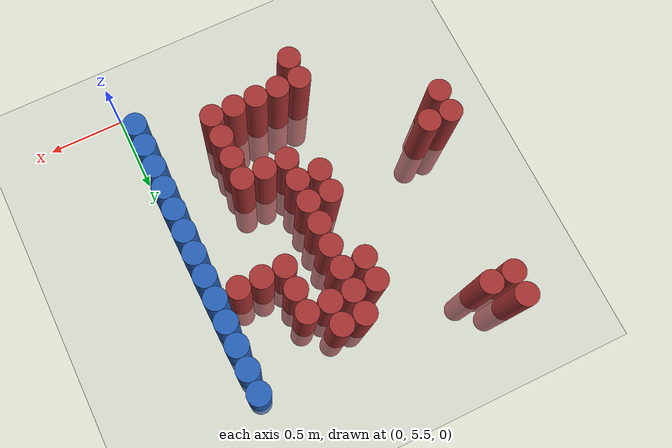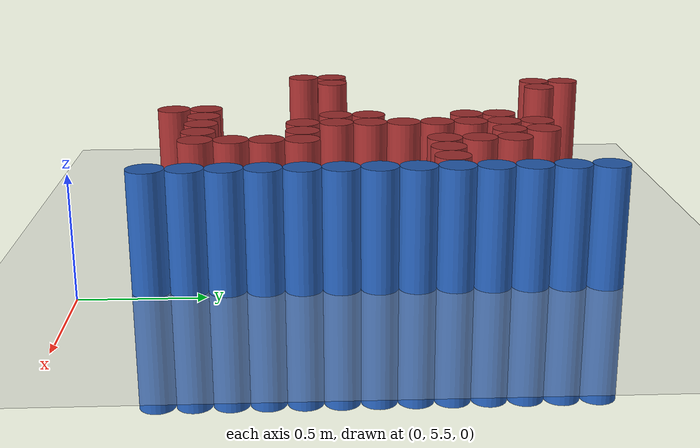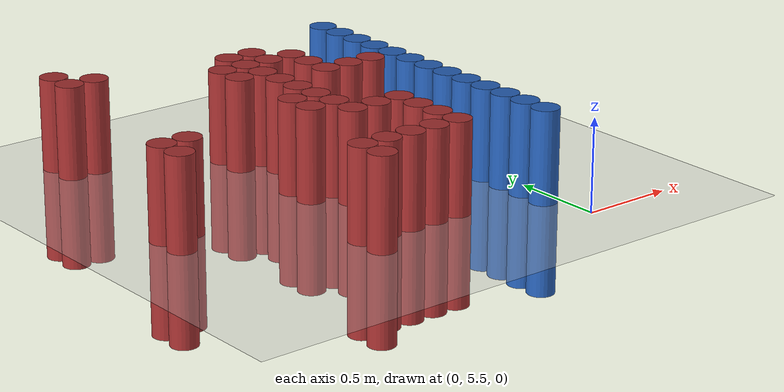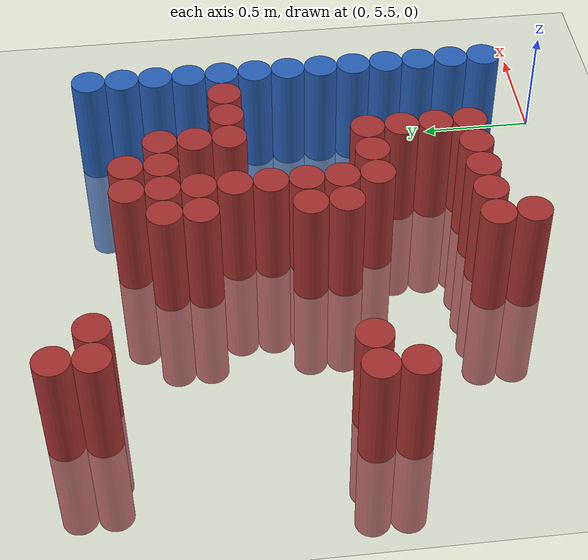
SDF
<sdf version="1.6">
 <world name="default">
  <model name="ground_plane">
   <static>1</static>
   <link name="link">
    <collision name="collision">
     <geometry><plane><normal>0 0 1</normal><size>100 100</size></plane></geometry>
     <surface><friction><ode><mu>100</mu><mu2>50</mu2></ode></friction></surface>
    </collision>
    <visual name="visual">
     <cast_shadows>0</cast_shadows>
     <geometry><plane><normal>0 0 1</normal><size>100 100</size></plane></geometry>
     <material>
      <script><uri>file://media/materials/scripts/gazebo.material</uri><name>Gazebo/Grey</name></script>
     </material>
    </visual>
   </link>
  </model>
  <model name="unit_cylinder_220">
   <static>1</static>
   <pose>-1.875000 6.375000 0.000000 0.000000 0.000000 0.000000</pose>
   <link name="link">
    <inertial>
     <mass>1</mass>
     <inertia><ixx>0.145833</ixx><ixy>0</ixy><ixz>0</ixz><iyy>0.145833</iyy><iyz>0</iyz><izz>0.125</izz></inertia>
    </inertial>
    <collision name="collision">
     <geometry><cylinder><radius>0.075000</radius><length>1</length></cylinder></geometry>
    </collision>
    <visual name="visual">
     <geometry><cylinder><radius>0.075000</radius><length>1</length></cylinder></geometry>
     <material>
      <ambient>0.648000 0.192000 0.192000 1</ambient>
      <diffuse>0.648000 0.192000 0.192000 1</diffuse>
     </material>
     <material>
      <script><name>Gazebo/Grey</name><uri>file://media/materials/scripts/gazebo.material</uri></script>
     </material>
    </visual>
   </link>
  </model>
  <model name="unit_cylinder_221">
   <static>1</static>
   <pose>-1.875000 6.525000 0.000000 0.000000 0.000000 0.000000</pose>
   <link name="link">
    <inertial>
     <mass>1</mass>
     <inertia><ixx>0.145833</ixx><ixy>0</ixy><ixz>0</ixz><iyy>0.145833</iyy><iyz>0</iyz><izz>0.125</izz></inertia>
    </inertial>
    <collision name="collision">
     <geometry><cylinder><radius>0.075000</radius><length>1</length></cylinder></geometry>
    </collision>
    <visual name="visual">
     <geometry><cylinder><radius>0.075000</radius><length>1</length></cylinder></geometry>
     <material>
      <ambient>0.648000 0.192000 0.192000 1</ambient>
      <diffuse>0.648000 0.192000 0.192000 1</diffuse>
     </material>
     <material>
      <script><name>Gazebo/Grey</name><uri>file://media/materials/scripts/gazebo.material</uri></script>
     </material>
    </visual>
   </link>
  </model>
  <model name="unit_cylinder_227">
   <static>1</static>
   <pose>-1.725000 6.525000 0.000000 0.000000 0.000000 0.000000</pose>
   <link name="link">
    <inertial>
     <mass>1</mass>
     <inertia><ixx>0.145833</ixx><ixy>0</ixy><ixz>0</ixz><iyy>0.145833</iyy><iyz>0</iyz><izz>0.125</izz></inertia>
    </inertial>
    <collision name="collision">
     <geometry><cylinder><radius>0.075000</radius><length>1</length></cylinder></geometry>
    </collision>
    <visual name="visual">
     <geometry><cylinder><radius>0.075000</radius><length>1</length></cylinder></geometry>
     <material>
      <ambient>0.648000 0.192000 0.192000 1</ambient>
      <diffuse>0.648000 0.192000 0.192000 1</diffuse>
     </material>
     <material>
      <script><name>Gazebo/Grey</name><uri>file://media/materials/scripts/gazebo.material</uri></script>
     </material>
    </visual>
   </link>
  </model>
  <model name="unit_cylinder_228">
   <static>1</static>
   <pose>-1.725000 7.575000 0.000000 0.000000 0.000000 0.000000</pose>
   <link name="link">
    <inertial>
     <mass>1</mass>
     <inertia><ixx>0.145833</ixx><ixy>0</ixy><ixz>0</ixz><iyy>0.145833</iyy><iyz>0</iyz><izz>0.125</izz></inertia>
    </inertial>
    <collision name="collision">
     <geometry><cylinder><radius>0.075000</radius><length>1</length></cylinder></geometry>
    </collision>
    <visual name="visual">
     <geometry><cylinder><radius>0.075000</radius><length>1</length></cylinder></geometry>
     <material>
      <ambient>0.648000 0.192000 0.192000 1</ambient>
      <diffuse>0.648000 0.192000 0.192000 1</diffuse>
     </material>
     <material>
      <script><name>Gazebo/Grey</name><uri>file://media/materials/scripts/gazebo.material</uri></script>
     </material>
    </visual>
   </link>
  </model>
  <model name="unit_cylinder_229">
   <static>1</static>
   <pose>-1.725000 7.725000 0.000000 0.000000 0.000000 0.000000</pose>
   <link name="link">
    <inertial>
     <mass>1</mass>
     <inertia><ixx>0.145833</ixx><ixy>0</ixy><ixz>0</ixz><iyy>0.145833</iyy><iyz>0</iyz><izz>0.125</izz></inertia>
    </inertial>
    <collision name="collision">
     <geometry><cylinder><radius>0.075000</radius><length>1</length></cylinder></geometry>
    </collision>
    <visual name="visual">
     <geometry><cylinder><radius>0.075000</radius><length>1</length></cylinder></geometry>
     <material>
      <ambient>0.648000 0.192000 0.192000 1</ambient>
      <diffuse>0.648000 0.192000 0.192000 1</diffuse>
     </material>
     <material>
      <script><name>Gazebo/Grey</name><uri>file://media/materials/scripts/gazebo.material</uri></script>
     </material>
    </visual>
   </link>
  </model>
  <model name="unit_cylinder_232">
   <static>1</static>
   <pose>-1.575000 7.575000 0.000000 0.000000 0.000000 0.000000</pose>
   <link name="link">
    <inertial>
     <mass>1</mass>
     <inertia><ixx>0.145833</ixx><ixy>0</ixy><ixz>0</ixz><iyy>0.145833</iyy><iyz>0</iyz><izz>0.125</izz></inertia>
    </inertial>
    <collision name="collision">
     <geometry><cylinder><radius>0.075000</radius><length>1</length></cylinder></geometry>
    </collision>
    <visual name="visual">
     <geometry><cylinder><radius>0.075000</radius><length>1</length></cylinder></geometry>
     <material>
      <ambient>0.648000 0.192000 0.192000 1</ambient>
      <diffuse>0.648000 0.192000 0.192000 1</diffuse>
     </material>
     <material>
      <script><name>Gazebo/Grey</name><uri>file://media/materials/scripts/gazebo.material</uri></script>
     </material>
    </visual>
   </link>
  </model>
  <model name="unit_cylinder_248">
   <static>1</static>
   <pose>-1.125000 5.775000 0.000000 0.000000 0.000000 0.000000</pose>
   <link name="link">
    <inertial>
     <mass>1</mass>
     <inertia><ixx>0.145833</ixx><ixy>0</ixy><ixz>0</ixz><iyy>0.145833</iyy><iyz>0</iyz><izz>0.125</izz></inertia>
    </inertial>
    <collision name="collision">
     <geometry><cylinder><radius>0.075000</radius><length>1</length></cylinder></geometry>
    </collision>
    <visual name="visual">
     <geometry><cylinder><radius>0.075000</radius><length>1</length></cylinder></geometry>
     <material>
      <ambient>0.648000 0.192000 0.192000 1</ambient>
      <diffuse>0.648000 0.192000 0.192000 1</diffuse>
     </material>
     <material>
      <script><name>Gazebo/Grey</name><uri>file://media/materials/scripts/gazebo.material</uri></script>
     </material>
    </visual>
   </link>
  </model>
  <model name="unit_cylinder_249">
   <static>1</static>
   <pose>-1.125000 5.925000 0.000000 0.000000 0.000000 0.000000</pose>
   <link name="link">
    <inertial>
     <mass>1</mass>
     <inertia><ixx>0.145833</ixx><ixy>0</ixy><ixz>0</ixz><iyy>0.145833</iyy><iyz>0</iyz><izz>0.125</izz></inertia>
    </inertial>
    <collision name="collision">
     <geometry><cylinder><radius>0.075000</radius><length>1</length></cylinder></geometry>
    </collision>
    <visual name="visual">
     <geometry><cylinder><radius>0.075000</radius><length>1</length></cylinder></geometry>
     <material>
      <ambient>0.648000 0.192000 0.192000 1</ambient>
      <diffuse>0.648000 0.192000 0.192000 1</diffuse>
     </material>
     <material>
      <script><name>Gazebo/Grey</name><uri>file://media/materials/scripts/gazebo.material</uri></script>
     </material>
    </visual>
   </link>
  </model>
  <model name="unit_cylinder_254">
   <static>1</static>
   <pose>-0.975000 5.925000 0.000000 0.000000 0.000000 0.000000</pose>
   <link name="link">
    <inertial>
     <mass>1</mass>
     <inertia><ixx>0.145833</ixx><ixy>0</ixy><ixz>0</ixz><iyy>0.145833</iyy><iyz>0</iyz><izz>0.125</izz></inertia>
    </inertial>
    <collision name="collision">
     <geometry><cylinder><radius>0.075000</radius><length>1</length></cylinder></geometry>
    </collision>
    <visual name="visual">
     <geometry><cylinder><radius>0.075000</radius><length>1</length></cylinder></geometry>
     <material>
      <ambient>0.648000 0.192000 0.192000 1</ambient>
      <diffuse>0.648000 0.192000 0.192000 1</diffuse>
     </material>
     <material>
      <script><name>Gazebo/Grey</name><uri>file://media/materials/scripts/gazebo.material</uri></script>
     </material>
    </visual>
   </link>
  </model>
  <model name="unit_cylinder_255">
   <static>1</static>
   <pose>-0.975000 6.525000 0.000000 0.000000 0.000000 0.000000</pose>
   <link name="link">
    <inertial>
     <mass>1</mass>
     <inertia><ixx>0.145833</ixx><ixy>0</ixy><ixz>0</ixz><iyy>0.145833</iyy><iyz>0</iyz><izz>0.125</izz></inertia>
    </inertial>
    <collision name="collision">
     <geometry><cylinder><radius>0.075000</radius><length>1</length></cylinder></geometry>
    </collision>
    <visual name="visual">
     <geometry><cylinder><radius>0.075000</radius><length>1</length></cylinder></geometry>
     <material>
      <ambient>0.648000 0.192000 0.192000 1</ambient>
      <diffuse>0.648000 0.192000 0.192000 1</diffuse>
     </material>
     <material>
      <script><name>Gazebo/Grey</name><uri>file://media/materials/scripts/gazebo.material</uri></script>
     </material>
    </visual>
   </link>
  </model>
  <model name="unit_cylinder_256">
   <static>1</static>
   <pose>-0.975000 6.675000 0.000000 0.000000 0.000000 0.000000</pose>
   <link name="link">
    <inertial>
     <mass>1</mass>
     <inertia><ixx>0.145833</ixx><ixy>0</ixy><ixz>0</ixz><iyy>0.145833</iyy><iyz>0</iyz><izz>0.125</izz></inertia>
    </inertial>
    <collision name="collision">
     <geometry><cylinder><radius>0.075000</radius><length>1</length></cylinder></geometry>
    </collision>
    <visual name="visual">
     <geometry><cylinder><radius>0.075000</radius><length>1</length></cylinder></geometry>
     <material>
      <ambient>0.648000 0.192000 0.192000 1</ambient>
      <diffuse>0.648000 0.192000 0.192000 1</diffuse>
     </material>
     <material>
      <script><name>Gazebo/Grey</name><uri>file://media/materials/scripts/gazebo.material</uri></script>
     </material>
    </visual>
   </link>
  </model>
  <model name="unit_cylinder_257">
   <static>1</static>
   <pose>-0.975000 7.125000 0.000000 0.000000 0.000000 0.000000</pose>
   <link name="link">
    <inertial>
     <mass>1</mass>
     <inertia><ixx>0.145833</ixx><ixy>0</ixy><ixz>0</ixz><iyy>0.145833</iyy><iyz>0</iyz><izz>0.125</izz></inertia>
    </inertial>
    <collision name="collision">
     <geometry><cylinder><radius>0.075000</radius><length>1</length></cylinder></geometry>
    </collision>
    <visual name="visual">
     <geometry><cylinder><radius>0.075000</radius><length>1</length></cylinder></geometry>
     <material>
      <ambient>0.648000 0.192000 0.192000 1</ambient>
      <diffuse>0.648000 0.192000 0.192000 1</diffuse>
     </material>
     <material>
      <script><name>Gazebo/Grey</name><uri>file://media/materials/scripts/gazebo.material</uri></script>
     </material>
    </visual>
   </link>
  </model>
  <model name="unit_cylinder_258">
   <static>1</static>
   <pose>-0.975000 7.275000 0.000000 0.000000 0.000000 0.000000</pose>
   <link name="link">
    <inertial>
     <mass>1</mass>
     <inertia><ixx>0.145833</ixx><ixy>0</ixy><ixz>0</ixz><iyy>0.145833</iyy><iyz>0</iyz><izz>0.125</izz></inertia>
    </inertial>
    <collision name="collision">
     <geometry><cylinder><radius>0.075000</radius><length>1</length></cylinder></geometry>
    </collision>
    <visual name="visual">
     <geometry><cylinder><radius>0.075000</radius><length>1</length></cylinder></geometry>
     <material>
      <ambient>0.648000 0.192000 0.192000 1</ambient>
      <diffuse>0.648000 0.192000 0.192000 1</diffuse>
     </material>
     <material>
      <script><name>Gazebo/Grey</name><uri>file://media/materials/scripts/gazebo.material</uri></script>
     </material>
    </visual>
   </link>
  </model>
  <model name="unit_cylinder_263">
   <static>1</static>
   <pose>-0.825000 5.925000 0.000000 0.000000 0.000000 0.000000</pose>
   <link name="link">
    <inertial>
     <mass>1</mass>
     <inertia><ixx>0.145833</ixx><ixy>0</ixy><ixz>0</ixz><iyy>0.145833</iyy><iyz>0</iyz><izz>0.125</izz></inertia>
    </inertial>
    <collision name="collision">
     <geometry><cylinder><radius>0.075000</radius><length>1</length></cylinder></geometry>
    </collision>
    <visual name="visual">
     <geometry><cylinder><radius>0.075000</radius><length>1</length></cylinder></geometry>
     <material>
      <ambient>0.648000 0.192000 0.192000 1</ambient>
      <diffuse>0.648000 0.192000 0.192000 1</diffuse>
     </material>
     <material>
      <script><name>Gazebo/Grey</name><uri>file://media/materials/scripts/gazebo.material</uri></script>
     </material>
    </visual>
   </link>
  </model>
  <model name="unit_cylinder_264">
   <static>1</static>
   <pose>-0.825000 6.375000 0.000000 0.000000 0.000000 0.000000</pose>
   <link name="link">
    <inertial>
     <mass>1</mass>
     <inertia><ixx>0.145833</ixx><ixy>0</ixy><ixz>0</ixz><iyy>0.145833</iyy><iyz>0</iyz><izz>0.125</izz></inertia>
    </inertial>
    <collision name="collision">
     <geometry><cylinder><radius>0.075000</radius><length>1</length></cylinder></geometry>
    </collision>
    <visual name="visual">
     <geometry><cylinder><radius>0.075000</radius><length>1</length></cylinder></geometry>
     <material>
      <ambient>0.648000 0.192000 0.192000 1</ambient>
      <diffuse>0.648000 0.192000 0.192000 1</diffuse>
     </material>
     <material>
      <script><name>Gazebo/Grey</name><uri>file://media/materials/scripts/gazebo.material</uri></script>
     </material>
    </visual>
   </link>
  </model>
  <model name="unit_cylinder_265">
   <static>1</static>
   <pose>-0.825000 6.525000 0.000000 0.000000 0.000000 0.000000</pose>
   <link name="link">
    <inertial>
     <mass>1</mass>
     <inertia><ixx>0.145833</ixx><ixy>0</ixy><ixz>0</ixz><iyy>0.145833</iyy><iyz>0</iyz><izz>0.125</izz></inertia>
    </inertial>
    <collision name="collision">
     <geometry><cylinder><radius>0.075000</radius><length>1</length></cylinder></geometry>
    </collision>
    <visual name="visual">
     <geometry><cylinder><radius>0.075000</radius><length>1</length></cylinder></geometry>
     <material>
      <ambient>0.648000 0.192000 0.192000 1</ambient>
      <diffuse>0.648000 0.192000 0.192000 1</diffuse>
     </material>
     <material>
      <script><name>Gazebo/Grey</name><uri>file://media/materials/scripts/gazebo.material</uri></script>
     </material>
    </visual>
   </link>
  </model>
  <model name="unit_cylinder_266">
   <static>1</static>
   <pose>-0.825000 6.675000 0.000000 0.000000 0.000000 0.000000</pose>
   <link name="link">
    <inertial>
     <mass>1</mass>
     <inertia><ixx>0.145833</ixx><ixy>0</ixy><ixz>0</ixz><iyy>0.145833</iyy><iyz>0</iyz><izz>0.125</izz></inertia>
    </inertial>
    <collision name="collision">
     <geometry><cylinder><radius>0.075000</radius><length>1</length></cylinder></geometry>
    </collision>
    <visual name="visual">
     <geometry><cylinder><radius>0.075000</radius><length>1</length></cylinder></geometry>
     <material>
      <ambient>0.648000 0.192000 0.192000 1</ambient>
      <diffuse>0.648000 0.192000 0.192000 1</diffuse>
     </material>
     <material>
      <script><name>Gazebo/Grey</name><uri>file://media/materials/scripts/gazebo.material</uri></script>
     </material>
    </visual>
   </link>
  </model>
  <model name="unit_cylinder_267">
   <static>1</static>
   <pose>-0.825000 6.825000 0.000000 0.000000 0.000000 0.000000</pose>
   <link name="link">
    <inertial>
     <mass>1</mass>
     <inertia><ixx>0.145833</ixx><ixy>0</ixy><ixz>0</ixz><iyy>0.145833</iyy><iyz>0</iyz><izz>0.125</izz></inertia>
    </inertial>
    <collision name="collision">
     <geometry><cylinder><radius>0.075000</radius><length>1</length></cylinder></geometry>
    </collision>
    <visual name="visual">
     <geometry><cylinder><radius>0.075000</radius><length>1</length></cylinder></geometry>
     <material>
      <ambient>0.648000 0.192000 0.192000 1</ambient>
      <diffuse>0.648000 0.192000 0.192000 1</diffuse>
     </material>
     <material>
      <script><name>Gazebo/Grey</name><uri>file://media/materials/scripts/gazebo.material</uri></script>
     </material>
    </visual>
   </link>
  </model>
  <model name="unit_cylinder_268">
   <static>1</static>
   <pose>-0.825000 6.975000 0.000000 0.000000 0.000000 0.000000</pose>
   <link name="link">
    <inertial>
     <mass>1</mass>
     <inertia><ixx>0.145833</ixx><ixy>0</ixy><ixz>0</ixz><iyy>0.145833</iyy><iyz>0</iyz><izz>0.125</izz></inertia>
    </inertial>
    <collision name="collision">
     <geometry><cylinder><radius>0.075000</radius><length>1</length></cylinder></geometry>
    </collision>
    <visual name="visual">
     <geometry><cylinder><radius>0.075000</radius><length>1</length></cylinder></geometry>
     <material>
      <ambient>0.648000 0.192000 0.192000 1</ambient>
      <diffuse>0.648000 0.192000 0.192000 1</diffuse>
     </material>
     <material>
      <script><name>Gazebo/Grey</name><uri>file://media/materials/scripts/gazebo.material</uri></script>
     </material>
    </visual>
   </link>
  </model>
  <model name="unit_cylinder_269">
   <static>1</static>
   <pose>-0.825000 7.125000 0.000000 0.000000 0.000000 0.000000</pose>
   <link name="link">
    <inertial>
     <mass>1</mass>
     <inertia><ixx>0.145833</ixx><ixy>0</ixy><ixz>0</ixz><iyy>0.145833</iyy><iyz>0</iyz><izz>0.125</izz></inertia>
    </inertial>
    <collision name="collision">
     <geometry><cylinder><radius>0.075000</radius><length>1</length></cylinder></geometry>
    </collision>
    <visual name="visual">
     <geometry><cylinder><radius>0.075000</radius><length>1</length></cylinder></geometry>
     <material>
      <ambient>0.648000 0.192000 0.192000 1</ambient>
      <diffuse>0.648000 0.192000 0.192000 1</diffuse>
     </material>
     <material>
      <script><name>Gazebo/Grey</name><uri>file://media/materials/scripts/gazebo.material</uri></script>
     </material>
    </visual>
   </link>
  </model>
  <model name="unit_cylinder_270">
   <static>1</static>
   <pose>-0.825000 7.275000 0.000000 0.000000 0.000000 0.000000</pose>
   <link name="link">
    <inertial>
     <mass>1</mass>
     <inertia><ixx>0.145833</ixx><ixy>0</ixy><ixz>0</ixz><iyy>0.145833</iyy><iyz>0</iyz><izz>0.125</izz></inertia>
    </inertial>
    <collision name="collision">
     <geometry><cylinder><radius>0.075000</radius><length>1</length></cylinder></geometry>
    </collision>
    <visual name="visual">
     <geometry><cylinder><radius>0.075000</radius><length>1</length></cylinder></geometry>
     <material>
      <ambient>0.648000 0.192000 0.192000 1</ambient>
      <diffuse>0.648000 0.192000 0.192000 1</diffuse>
     </material>
     <material>
      <script><name>Gazebo/Grey</name><uri>file://media/materials/scripts/gazebo.material</uri></script>
     </material>
    </visual>
   </link>
  </model>
  <model name="unit_cylinder_271">
   <static>1</static>
   <pose>-0.825000 7.425000 0.000000 0.000000 0.000000 0.000000</pose>
   <link name="link">
    <inertial>
     <mass>1</mass>
     <inertia><ixx>0.145833</ixx><ixy>0</ixy><ixz>0</ixz><iyy>0.145833</iyy><iyz>0</iyz><izz>0.125</izz></inertia>
    </inertial>
    <collision name="collision">
     <geometry><cylinder><radius>0.075000</radius><length>1</length></cylinder></geometry>
    </collision>
    <visual name="visual">
     <geometry><cylinder><radius>0.075000</radius><length>1</length></cylinder></geometry>
     <material>
      <ambient>0.648000 0.192000 0.192000 1</ambient>
      <diffuse>0.648000 0.192000 0.192000 1</diffuse>
     </material>
     <material>
      <script><name>Gazebo/Grey</name><uri>file://media/materials/scripts/gazebo.material</uri></script>
     </material>
    </visual>
   </link>
  </model>
  <model name="unit_cylinder_277">
   <static>1</static>
   <pose>-0.675000 5.925000 0.000000 0.000000 0.000000 0.000000</pose>
   <link name="link">
    <inertial>
     <mass>1</mass>
     <inertia><ixx>0.145833</ixx><ixy>0</ixy><ixz>0</ixz><iyy>0.145833</iyy><iyz>0</iyz><izz>0.125</izz></inertia>
    </inertial>
    <collision name="collision">
     <geometry><cylinder><radius>0.075000</radius><length>1</length></cylinder></geometry>
    </collision>
    <visual name="visual">
     <geometry><cylinder><radius>0.075000</radius><length>1</length></cylinder></geometry>
     <material>
      <ambient>0.648000 0.192000 0.192000 1</ambient>
      <diffuse>0.648000 0.192000 0.192000 1</diffuse>
     </material>
     <material>
      <script><name>Gazebo/Grey</name><uri>file://media/materials/scripts/gazebo.material</uri></script>
     </material>
    </visual>
   </link>
  </model>
  <model name="unit_cylinder_278">
   <static>1</static>
   <pose>-0.675000 6.375000 0.000000 0.000000 0.000000 0.000000</pose>
   <link name="link">
    <inertial>
     <mass>1</mass>
     <inertia><ixx>0.145833</ixx><ixy>0</ixy><ixz>0</ixz><iyy>0.145833</iyy><iyz>0</iyz><izz>0.125</izz></inertia>
    </inertial>
    <collision name="collision">
     <geometry><cylinder><radius>0.075000</radius><length>1</length></cylinder></geometry>
    </collision>
    <visual name="visual">
     <geometry><cylinder><radius>0.075000</radius><length>1</length></cylinder></geometry>
     <material>
      <ambient>0.648000 0.192000 0.192000 1</ambient>
      <diffuse>0.648000 0.192000 0.192000 1</diffuse>
     </material>
     <material>
      <script><name>Gazebo/Grey</name><uri>file://media/materials/scripts/gazebo.material</uri></script>
     </material>
    </visual>
   </link>
  </model>
  <model name="unit_cylinder_279">
   <static>1</static>
   <pose>-0.675000 7.275000 0.000000 0.000000 0.000000 0.000000</pose>
   <link name="link">
    <inertial>
     <mass>1</mass>
     <inertia><ixx>0.145833</ixx><ixy>0</ixy><ixz>0</ixz><iyy>0.145833</iyy><iyz>0</iyz><izz>0.125</izz></inertia>
    </inertial>
    <collision name="collision">
     <geometry><cylinder><radius>0.075000</radius><length>1</length></cylinder></geometry>
    </collision>
    <visual name="visual">
     <geometry><cylinder><radius>0.075000</radius><length>1</length></cylinder></geometry>
     <material>
      <ambient>0.648000 0.192000 0.192000 1</ambient>
      <diffuse>0.648000 0.192000 0.192000 1</diffuse>
     </material>
     <material>
      <script><name>Gazebo/Grey</name><uri>file://media/materials/scripts/gazebo.material</uri></script>
     </material>
    </visual>
   </link>
  </model>
  <model name="unit_cylinder_280">
   <static>1</static>
   <pose>-0.675000 7.425000 0.000000 0.000000 0.000000 0.000000</pose>
   <link name="link">
    <inertial>
     <mass>1</mass>
     <inertia><ixx>0.145833</ixx><ixy>0</ixy><ixz>0</ixz><iyy>0.145833</iyy><iyz>0</iyz><izz>0.125</izz></inertia>
    </inertial>
    <collision name="collision">
     <geometry><cylinder><radius>0.075000</radius><length>1</length></cylinder></geometry>
    </collision>
    <visual name="visual">
     <geometry><cylinder><radius>0.075000</radius><length>1</length></cylinder></geometry>
     <material>
      <ambient>0.648000 0.192000 0.192000 1</ambient>
      <diffuse>0.648000 0.192000 0.192000 1</diffuse>
     </material>
     <material>
      <script><name>Gazebo/Grey</name><uri>file://media/materials/scripts/gazebo.material</uri></script>
     </material>
    </visual>
   </link>
  </model>
  <model name="unit_cylinder_283">
   <static>1</static>
   <pose>-0.525000 5.925000 0.000000 0.000000 0.000000 0.000000</pose>
   <link name="link">
    <inertial>
     <mass>1</mass>
     <inertia><ixx>0.145833</ixx><ixy>0</ixy><ixz>0</ixz><iyy>0.145833</iyy><iyz>0</iyz><izz>0.125</izz></inertia>
    </inertial>
    <collision name="collision">
     <geometry><cylinder><radius>0.075000</radius><length>1</length></cylinder></geometry>
    </collision>
    <visual name="visual">
     <geometry><cylinder><radius>0.075000</radius><length>1</length></cylinder></geometry>
     <material>
      <ambient>0.648000 0.192000 0.192000 1</ambient>
      <diffuse>0.648000 0.192000 0.192000 1</diffuse>
     </material>
     <material>
      <script><name>Gazebo/Grey</name><uri>file://media/materials/scripts/gazebo.material</uri></script>
     </material>
    </visual>
   </link>
  </model>
  <model name="unit_cylinder_284">
   <static>1</static>
   <pose>-0.525000 6.075000 0.000000 0.000000 0.000000 0.000000</pose>
   <link name="link">
    <inertial>
     <mass>1</mass>
     <inertia><ixx>0.145833</ixx><ixy>0</ixy><ixz>0</ixz><iyy>0.145833</iyy><iyz>0</iyz><izz>0.125</izz></inertia>
    </inertial>
    <collision name="collision">
     <geometry><cylinder><radius>0.075000</radius><length>1</length></cylinder></geometry>
    </collision>
    <visual name="visual">
     <geometry><cylinder><radius>0.075000</radius><length>1</length></cylinder></geometry>
     <material>
      <ambient>0.648000 0.192000 0.192000 1</ambient>
      <diffuse>0.648000 0.192000 0.192000 1</diffuse>
     </material>
     <material>
      <script><name>Gazebo/Grey</name><uri>file://media/materials/scripts/gazebo.material</uri></script>
     </material>
    </visual>
   </link>
  </model>
  <model name="unit_cylinder_285">
   <static>1</static>
   <pose>-0.525000 6.225000 0.000000 0.000000 0.000000 0.000000</pose>
   <link name="link">
    <inertial>
     <mass>1</mass>
     <inertia><ixx>0.145833</ixx><ixy>0</ixy><ixz>0</ixz><iyy>0.145833</iyy><iyz>0</iyz><izz>0.125</izz></inertia>
    </inertial>
    <collision name="collision">
     <geometry><cylinder><radius>0.075000</radius><length>1</length></cylinder></geometry>
    </collision>
    <visual name="visual">
     <geometry><cylinder><radius>0.075000</radius><length>1</length></cylinder></geometry>
     <material>
      <ambient>0.648000 0.192000 0.192000 1</ambient>
      <diffuse>0.648000 0.192000 0.192000 1</diffuse>
     </material>
     <material>
      <script><name>Gazebo/Grey</name><uri>file://media/materials/scripts/gazebo.material</uri></script>
     </material>
    </visual>
   </link>
  </model>
  <model name="unit_cylinder_286">
   <static>1</static>
   <pose>-0.525000 6.375000 0.000000 0.000000 0.000000 0.000000</pose>
   <link name="link">
    <inertial>
     <mass>1</mass>
     <inertia><ixx>0.145833</ixx><ixy>0</ixy><ixz>0</ixz><iyy>0.145833</iyy><iyz>0</iyz><izz>0.125</izz></inertia>
    </inertial>
    <collision name="collision">
     <geometry><cylinder><radius>0.075000</radius><length>1</length></cylinder></geometry>
    </collision>
    <visual name="visual">
     <geometry><cylinder><radius>0.075000</radius><length>1</length></cylinder></geometry>
     <material>
      <ambient>0.648000 0.192000 0.192000 1</ambient>
      <diffuse>0.648000 0.192000 0.192000 1</diffuse>
     </material>
     <material>
      <script><name>Gazebo/Grey</name><uri>file://media/materials/scripts/gazebo.material</uri></script>
     </material>
    </visual>
   </link>
  </model>
  <model name="unit_cylinder_287">
   <static>1</static>
   <pose>-0.525000 6.975000 0.000000 0.000000 0.000000 0.000000</pose>
   <link name="link">
    <inertial>
     <mass>1</mass>
     <inertia><ixx>0.145833</ixx><ixy>0</ixy><ixz>0</ixz><iyy>0.145833</iyy><iyz>0</iyz><izz>0.125</izz></inertia>
    </inertial>
    <collision name="collision">
     <geometry><cylinder><radius>0.075000</radius><length>1</length></cylinder></geometry>
    </collision>
    <visual name="visual">
     <geometry><cylinder><radius>0.075000</radius><length>1</length></cylinder></geometry>
     <material>
      <ambient>0.648000 0.192000 0.192000 1</ambient>
      <diffuse>0.648000 0.192000 0.192000 1</diffuse>
     </material>
     <material>
      <script><name>Gazebo/Grey</name><uri>file://media/materials/scripts/gazebo.material</uri></script>
     </material>
    </visual>
   </link>
  </model>
  <model name="unit_cylinder_288">
   <static>1</static>
   <pose>-0.525000 7.125000 0.000000 0.000000 0.000000 0.000000</pose>
   <link name="link">
    <inertial>
     <mass>1</mass>
     <inertia><ixx>0.145833</ixx><ixy>0</ixy><ixz>0</ixz><iyy>0.145833</iyy><iyz>0</iyz><izz>0.125</izz></inertia>
    </inertial>
    <collision name="collision">
     <geometry><cylinder><radius>0.075000</radius><length>1</length></cylinder></geometry>
    </collision>
    <visual name="visual">
     <geometry><cylinder><radius>0.075000</radius><length>1</length></cylinder></geometry>
     <material>
      <ambient>0.648000 0.192000 0.192000 1</ambient>
      <diffuse>0.648000 0.192000 0.192000 1</diffuse>
     </material>
     <material>
      <script><name>Gazebo/Grey</name><uri>file://media/materials/scripts/gazebo.material</uri></script>
     </material>
    </visual>
   </link>
  </model>
  <model name="unit_cylinder_289">
   <static>1</static>
   <pose>-0.525000 7.275000 0.000000 0.000000 0.000000 0.000000</pose>
   <link name="link">
    <inertial>
     <mass>1</mass>
     <inertia><ixx>0.145833</ixx><ixy>0</ixy><ixz>0</ixz><iyy>0.145833</iyy><iyz>0</iyz><izz>0.125</izz></inertia>
    </inertial>
    <collision name="collision">
     <geometry><cylinder><radius>0.075000</radius><length>1</length></cylinder></geometry>
    </collision>
    <visual name="visual">
     <geometry><cylinder><radius>0.075000</radius><length>1</length></cylinder></geometry>
     <material>
      <ambient>0.648000 0.192000 0.192000 1</ambient>
      <diffuse>0.648000 0.192000 0.192000 1</diffuse>
     </material>
     <material>
      <script><name>Gazebo/Grey</name><uri>file://media/materials/scripts/gazebo.material</uri></script>
     </material>
    </visual>
   </link>
  </model>
  <model name="unit_cylinder_292">
   <static>1</static>
   <pose>-0.375000 6.975000 0.000000 0.000000 0.000000 0.000000</pose>
   <link name="link">
    <inertial>
     <mass>1</mass>
     <inertia><ixx>0.145833</ixx><ixy>0</ixy><ixz>0</ixz><iyy>0.145833</iyy><iyz>0</iyz><izz>0.125</izz></inertia>
    </inertial>
    <collision name="collision">
     <geometry><cylinder><radius>0.075000</radius><length>1</length></cylinder></geometry>
    </collision>
    <visual name="visual">
     <geometry><cylinder><radius>0.075000</radius><length>1</length></cylinder></geometry>
     <material>
      <ambient>0.648000 0.192000 0.192000 1</ambient>
      <diffuse>0.648000 0.192000 0.192000 1</diffuse>
     </material>
     <material>
      <script><name>Gazebo/Grey</name><uri>file://media/materials/scripts/gazebo.material</uri></script>
     </material>
    </visual>
   </link>
  </model>
  <model name="unit_cylinder_300">
   <static>1</static>
   <pose>-0.225000 6.975000 0.000000 0.000000 0.000000 0.000000</pose>
   <link name="link">
    <inertial>
     <mass>1</mass>
     <inertia><ixx>0.145833</ixx><ixy>0</ixy><ixz>0</ixz><iyy>0.145833</iyy><iyz>0</iyz><izz>0.125</izz></inertia>
    </inertial>
    <collision name="collision">
     <geometry><cylinder><radius>0.075000</radius><length>1</length></cylinder></geometry>
    </collision>
    <visual name="visual">
     <geometry><cylinder><radius>0.075000</radius><length>1</length></cylinder></geometry>
     <material>
      <ambient>0.648000 0.192000 0.192000 1</ambient>
      <diffuse>0.648000 0.192000 0.192000 1</diffuse>
     </material>
     <material>
      <script><name>Gazebo/Grey</name><uri>file://media/materials/scripts/gazebo.material</uri></script>
     </material>
    </visual>
   </link>
  </model>
  <model name="unit_cylinder_309">
   <static>1</static>
   <pose>-0.075000 5.775000 0.000000 0.000000 0.000000 0.000000</pose>
   <link name="link">
    <inertial>
     <mass>1</mass>
     <inertia><ixx>0.145833</ixx><ixy>0</ixy><ixz>0</ixz><iyy>0.145833</iyy><iyz>0</iyz><izz>0.125</izz></inertia>
    </inertial>
    <collision name="collision">
     <geometry><cylinder><radius>0.075000</radius><length>1</length></cylinder></geometry>
    </collision>
    <visual name="visual">
     <geometry><cylinder><radius>0.075000</radius><length>1</length></cylinder></geometry>
     <material>
      <ambient>0.152000 0.379000 0.720000 1</ambient>
      <diffuse>0.152000 0.379000 0.720000 1</diffuse>
     </material>
     <material>
      <script><name>Gazebo/Grey</name><uri>file://media/materials/scripts/gazebo.material</uri></script>
     </material>
    </visual>
   </link>
  </model>
  <model name="unit_cylinder_310">
   <static>1</static>
   <pose>-0.075000 5.925000 0.000000 0.000000 0.000000 0.000000</pose>
   <link name="link">
    <inertial>
     <mass>1</mass>
     <inertia><ixx>0.145833</ixx><ixy>0</ixy><ixz>0</ixz><iyy>0.145833</iyy><iyz>0</iyz><izz>0.125</izz></inertia>
    </inertial>
    <collision name="collision">
     <geometry><cylinder><radius>0.075000</radius><length>1</length></cylinder></geometry>
    </collision>
    <visual name="visual">
     <geometry><cylinder><radius>0.075000</radius><length>1</length></cylinder></geometry>
     <material>
      <ambient>0.152000 0.379000 0.720000 1</ambient>
      <diffuse>0.152000 0.379000 0.720000 1</diffuse>
     </material>
     <material>
      <script><name>Gazebo/Grey</name><uri>file://media/materials/scripts/gazebo.material</uri></script>
     </material>
    </visual>
   </link>
  </model>
  <model name="unit_cylinder_311">
   <static>1</static>
   <pose>-0.075000 6.075000 0.000000 0.000000 0.000000 0.000000</pose>
   <link name="link">
    <inertial>
     <mass>1</mass>
     <inertia><ixx>0.145833</ixx><ixy>0</ixy><ixz>0</ixz><iyy>0.145833</iyy><iyz>0</iyz><izz>0.125</izz></inertia>
    </inertial>
    <collision name="collision">
     <geometry><cylinder><radius>0.075000</radius><length>1</length></cylinder></geometry>
    </collision>
    <visual name="visual">
     <geometry><cylinder><radius>0.075000</radius><length>1</length></cylinder></geometry>
     <material>
      <ambient>0.152000 0.379000 0.720000 1</ambient>
      <diffuse>0.152000 0.379000 0.720000 1</diffuse>
     </material>
     <material>
      <script><name>Gazebo/Grey</name><uri>file://media/materials/scripts/gazebo.material</uri></script>
     </material>
    </visual>
   </link>
  </model>
  <model name="unit_cylinder_312">
   <static>1</static>
   <pose>-0.075000 6.225000 0.000000 0.000000 0.000000 0.000000</pose>
   <link name="link">
    <inertial>
     <mass>1</mass>
     <inertia><ixx>0.145833</ixx><ixy>0</ixy><ixz>0</ixz><iyy>0.145833</iyy><iyz>0</iyz><izz>0.125</izz></inertia>
    </inertial>
    <collision name="collision">
     <geometry><cylinder><radius>0.075000</radius><length>1</length></cylinder></geometry>
    </collision>
    <visual name="visual">
     <geometry><cylinder><radius>0.075000</radius><length>1</length></cylinder></geometry>
     <material>
      <ambient>0.152000 0.379000 0.720000 1</ambient>
      <diffuse>0.152000 0.379000 0.720000 1</diffuse>
     </material>
     <material>
      <script><name>Gazebo/Grey</name><uri>file://media/materials/scripts/gazebo.material</uri></script>
     </material>
    </visual>
   </link>
  </model>
  <model name="unit_cylinder_313">
   <static>1</static>
   <pose>-0.075000 6.375000 0.000000 0.000000 0.000000 0.000000</pose>
   <link name="link">
    <inertial>
     <mass>1</mass>
     <inertia><ixx>0.145833</ixx><ixy>0</ixy><ixz>0</ixz><iyy>0.145833</iyy><iyz>0</iyz><izz>0.125</izz></inertia>
    </inertial>
    <collision name="collision">
     <geometry><cylinder><radius>0.075000</radius><length>1</length></cylinder></geometry>
    </collision>
    <visual name="visual">
     <geometry><cylinder><radius>0.075000</radius><length>1</length></cylinder></geometry>
     <material>
      <ambient>0.152000 0.379000 0.720000 1</ambient>
      <diffuse>0.152000 0.379000 0.720000 1</diffuse>
     </material>
     <material>
      <script><name>Gazebo/Grey</name><uri>file://media/materials/scripts/gazebo.material</uri></script>
     </material>
    </visual>
   </link>
  </model>
  <model name="unit_cylinder_314">
   <static>1</static>
   <pose>-0.075000 6.525000 0.000000 0.000000 0.000000 0.000000</pose>
   <link name="link">
    <inertial>
     <mass>1</mass>
     <inertia><ixx>0.145833</ixx><ixy>0</ixy><ixz>0</ixz><iyy>0.145833</iyy><iyz>0</iyz><izz>0.125</izz></inertia>
    </inertial>
    <collision name="collision">
     <geometry><cylinder><radius>0.075000</radius><length>1</length></cylinder></geometry>
    </collision>
    <visual name="visual">
     <geometry><cylinder><radius>0.075000</radius><length>1</length></cylinder></geometry>
     <material>
      <ambient>0.152000 0.379000 0.720000 1</ambient>
      <diffuse>0.152000 0.379000 0.720000 1</diffuse>
     </material>
     <material>
      <script><name>Gazebo/Grey</name><uri>file://media/materials/scripts/gazebo.material</uri></script>
     </material>
    </visual>
   </link>
  </model>
  <model name="unit_cylinder_315">
   <static>1</static>
   <pose>-0.075000 6.675000 0.000000 0.000000 0.000000 0.000000</pose>
   <link name="link">
    <inertial>
     <mass>1</mass>
     <inertia><ixx>0.145833</ixx><ixy>0</ixy><ixz>0</ixz><iyy>0.145833</iyy><iyz>0</iyz><izz>0.125</izz></inertia>
    </inertial>
    <collision name="collision">
     <geometry><cylinder><radius>0.075000</radius><length>1</length></cylinder></geometry>
    </collision>
    <visual name="visual">
     <geometry><cylinder><radius>0.075000</radius><length>1</length></cylinder></geometry>
     <material>
      <ambient>0.152000 0.379000 0.720000 1</ambient>
      <diffuse>0.152000 0.379000 0.720000 1</diffuse>
     </material>
     <material>
      <script><name>Gazebo/Grey</name><uri>file://media/materials/scripts/gazebo.material</uri></script>
     </material>
    </visual>
   </link>
  </model>
  <model name="unit_cylinder_316">
   <static>1</static>
   <pose>-0.075000 6.825000 0.000000 0.000000 0.000000 0.000000</pose>
   <link name="link">
    <inertial>
     <mass>1</mass>
     <inertia><ixx>0.145833</ixx><ixy>0</ixy><ixz>0</ixz><iyy>0.145833</iyy><iyz>0</iyz><izz>0.125</izz></inertia>
    </inertial>
    <collision name="collision">
     <geometry><cylinder><radius>0.075000</radius><length>1</length></cylinder></geometry>
    </collision>
    <visual name="visual">
     <geometry><cylinder><radius>0.075000</radius><length>1</length></cylinder></geometry>
     <material>
      <ambient>0.152000 0.379000 0.720000 1</ambient>
      <diffuse>0.152000 0.379000 0.720000 1</diffuse>
     </material>
     <material>
      <script><name>Gazebo/Grey</name><uri>file://media/materials/scripts/gazebo.material</uri></script>
     </material>
    </visual>
   </link>
  </model>
  <model name="unit_cylinder_317">
   <static>1</static>
   <pose>-0.075000 6.975000 0.000000 0.000000 0.000000 0.000000</pose>
   <link name="link">
    <inertial>
     <mass>1</mass>
     <inertia><ixx>0.145833</ixx><ixy>0</ixy><ixz>0</ixz><iyy>0.145833</iyy><iyz>0</iyz><izz>0.125</izz></inertia>
    </inertial>
    <collision name="collision">
     <geometry><cylinder><radius>0.075000</radius><length>1</length></cylinder></geometry>
    </collision>
    <visual name="visual">
     <geometry><cylinder><radius>0.075000</radius><length>1</length></cylinder></geometry>
     <material>
      <ambient>0.152000 0.379000 0.720000 1</ambient>
      <diffuse>0.152000 0.379000 0.720000 1</diffuse>
     </material>
     <material>
      <script><name>Gazebo/Grey</name><uri>file://media/materials/scripts/gazebo.material</uri></script>
     </material>
    </visual>
   </link>
  </model>
  <model name="unit_cylinder_318">
   <static>1</static>
   <pose>-0.075000 7.125000 0.000000 0.000000 0.000000 0.000000</pose>
   <link name="link">
    <inertial>
     <mass>1</mass>
     <inertia><ixx>0.145833</ixx><ixy>0</ixy><ixz>0</ixz><iyy>0.145833</iyy><iyz>0</iyz><izz>0.125</izz></inertia>
    </inertial>
    <collision name="collision">
     <geometry><cylinder><radius>0.075000</radius><length>1</length></cylinder></geometry>
    </collision>
    <visual name="visual">
     <geometry><cylinder><radius>0.075000</radius><length>1</length></cylinder></geometry>
     <material>
      <ambient>0.152000 0.379000 0.720000 1</ambient>
      <diffuse>0.152000 0.379000 0.720000 1</diffuse>
     </material>
     <material>
      <script><name>Gazebo/Grey</name><uri>file://media/materials/scripts/gazebo.material</uri></script>
     </material>
    </visual>
   </link>
  </model>
  <model name="unit_cylinder_319">
   <static>1</static>
   <pose>-0.075000 7.275000 0.000000 0.000000 0.000000 0.000000</pose>
   <link name="link">
    <inertial>
     <mass>1</mass>
     <inertia><ixx>0.145833</ixx><ixy>0</ixy><ixz>0</ixz><iyy>0.145833</iyy><iyz>0</iyz><izz>0.125</izz></inertia>
    </inertial>
    <collision name="collision">
     <geometry><cylinder><radius>0.075000</radius><length>1</length></cylinder></geometry>
    </collision>
    <visual name="visual">
     <geometry><cylinder><radius>0.075000</radius><length>1</length></cylinder></geometry>
     <material>
      <ambient>0.152000 0.379000 0.720000 1</ambient>
      <diffuse>0.152000 0.379000 0.720000 1</diffuse>
     </material>
     <material>
      <script><name>Gazebo/Grey</name><uri>file://media/materials/scripts/gazebo.material</uri></script>
     </material>
    </visual>
   </link>
  </model>
  <model name="unit_cylinder_320">
   <static>1</static>
   <pose>-0.075000 7.425000 0.000000 0.000000 0.000000 0.000000</pose>
   <link name="link">
    <inertial>
     <mass>1</mass>
     <inertia><ixx>0.145833</ixx><ixy>0</ixy><ixz>0</ixz><iyy>0.145833</iyy><iyz>0</iyz><izz>0.125</izz></inertia>
    </inertial>
    <collision name="collision">
     <geometry><cylinder><radius>0.075000</radius><length>1</length></cylinder></geometry>
    </collision>
    <visual name="visual">
     <geometry><cylinder><radius>0.075000</radius><length>1</length></cylinder></geometry>
     <material>
      <ambient>0.152000 0.379000 0.720000 1</ambient>
      <diffuse>0.152000 0.379000 0.720000 1</diffuse>
     </material>
     <material>
      <script><name>Gazebo/Grey</name><uri>file://media/materials/scripts/gazebo.material</uri></script>
     </material>
    </visual>
   </link>
  </model>
  <model name="unit_cylinder_321">
   <static>1</static>
   <pose>-0.075000 7.575000 0.000000 0.000000 0.000000 0.000000</pose>
   <link name="link">
    <inertial>
     <mass>1</mass>
     <inertia><ixx>0.145833</ixx><ixy>0</ixy><ixz>0</ixz><iyy>0.145833</iyy><iyz>0</iyz><izz>0.125</izz></inertia>
    </inertial>
    <collision name="collision">
     <geometry><cylinder><radius>0.075000</radius><length>1</length></cylinder></geometry>
    </collision>
    <visual name="visual">
     <geometry><cylinder><radius>0.075000</radius><length>1</length></cylinder></geometry>
     <material>
      <ambient>0.152000 0.379000 0.720000 1</ambient>
      <diffuse>0.152000 0.379000 0.720000 1</diffuse>
     </material>
     <material>
      <script><name>Gazebo/Grey</name><uri>file://media/materials/scripts/gazebo.material</uri></script>
     </material>
    </visual>
   </link>
  </model>
 </world>
</sdf>
